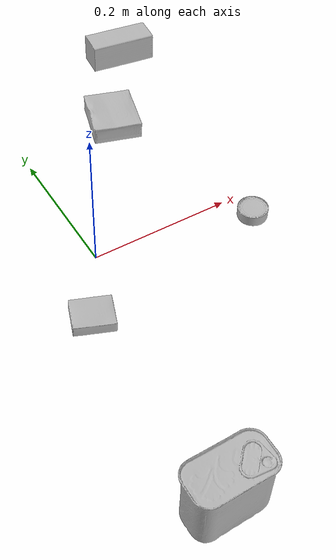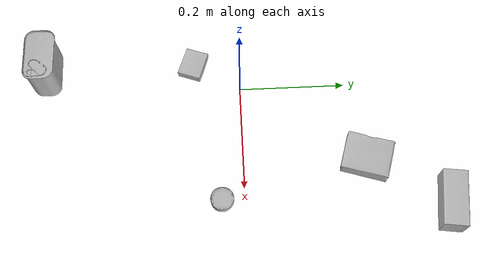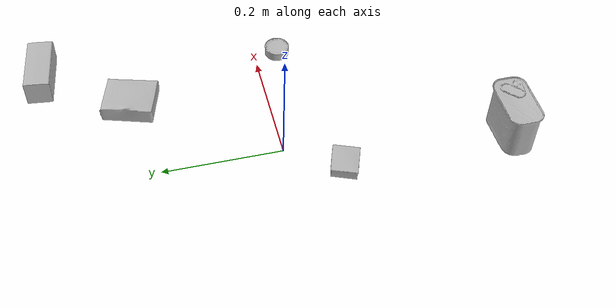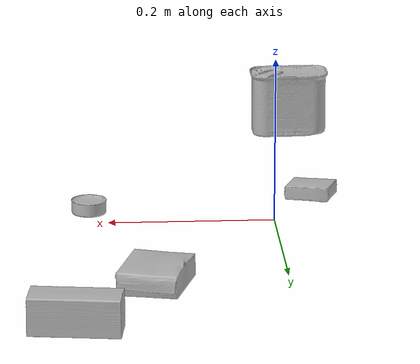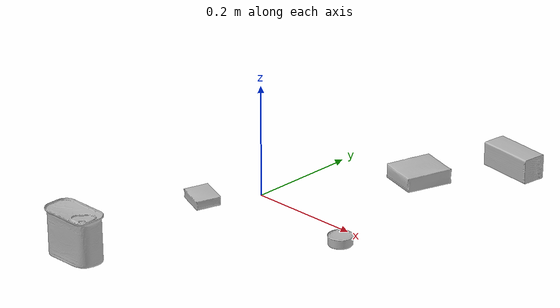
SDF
<sdf version="1.4">
  <world name="default">
    <light name="light1" type="point">
      <pose>0 0 1 0 0 0</pose>
      <diffuse>3 3 3 1</diffuse>
      <specular>3 3 3 1</specular>
    </light>
    <light name="light2" type="point">
      <pose>0 0.5 2 0 0 0</pose>
      <diffuse>1 1 1 1</diffuse>
      <specular>1 1 1 1</specular>
    </light>
    <light name="light3" type="point">
      <pose>0 0.5 2 0 0 0</pose>
      <diffuse>3 3 3 1</diffuse>
      <specular>3 3 3 1</specular>
    </light>
    <scene>
      <ambient>0.7 0.7 0.7</ambient>
    </scene>
    <model name="box1">
      <link name="link_box1">
        <collision name="default">
          <geometry>
            <mesh>
              <uri>model://pudding_box/collision_meshes/collision.obj</uri>
              <scale>0.5 0.5 0.5</scale>
            </mesh>
          </geometry>
          <surface>
            <friction>
              <ode>
                <mu>0.5</mu>
                <mu2>0.5</mu2>
              </ode>
            </friction>
          <contact>
        <ode>
            <max_vel>0</max_vel>
            <min_depth>0.0001</min_depth>
            <kp>1e8</kp>
        </ode>
    </contact></surface>
        </collision>
        <visual name="default">
          <geometry>
            <mesh>
              <uri>model://pudding_box/visual_meshes/visual.dae</uri>
              <scale>0.5 0.5 0.5</scale>
            </mesh>
          </geometry>
        </visual>
        <inertial>
          <mass>0.037190694361925125</mass>
          <pose>0.00024474109522998333 0.00040339428232982755 -0.0002594413817860186 0.005213101817299687 -0.0066037968510836995 0.02007982330137587</pose>
          <inertia>
            <ixx>1.0510541e-05</ixx>
            <iyy>7.071568e-06</iyy>
            <izz>1.552156e-05</izz>
            <ixy>0</ixy>
            <ixz>0</ixz>
            <iyz>0</iyz>
          </inertia>
        </inertial>
      </link>
      <pose>-0.05221480503678322 -0.08861435204744339 0.00986290629953146 0.022348207395467994 -0.011391923461341172 1.2196157335563842</pose>
    </model>
    <model name="box2">
      <link name="link_box2">
        <collision name="default">
          <geometry>
            <mesh>
              <uri>model://gelatin_box/collision_meshes/collision.obj</uri>
              <scale>1.0 1.0 1.0</scale>
            </mesh>
          </geometry>
          <surface>
            <friction>
              <ode>
                <mu>0.5</mu>
                <mu2>0.5</mu2>
              </ode>
            </friction>
          <contact>
        <ode>
            <max_vel>0</max_vel>
            <min_depth>0.0001</min_depth>
            <kp>1e8</kp>
        </ode>
    </contact></surface>
        </collision>
        <visual name="default">
          <geometry>
            <mesh>
              <uri>model://gelatin_box/visual_meshes/visual.dae</uri>
              <scale>1.0 1.0 1.0</scale>
            </mesh>
          </geometry>
        </visual>
        <inertial>
          <mass>0.11744645982980728</mass>
          <pose>0.0004319618456065655 0.00011156871914863586 -0.0003640321083366871 -0.001050371865231848 -0.004755818223747806 0.01644056319675078</pose>
          <inertia>
            <ixx>8.290762e-05</ixx>
            <iyy>5.9220478e-05</iyy>
            <izz>0.00012620387</izz>
            <ixy>0</ixy>
            <ixz>0</ixz>
            <iyz>0</iyz>
          </inertia>
        </inertial>
      </link>
      <pose>0.15332382917404175 0.2289096564054489 0.015168312005698681 0.005596903320977597 -0.0073039381188366335 2.8385780961896634</pose>
    </model>
    <model name="box3">
      <link name="link_box3">
        <collision name="default">
          <geometry>
            <mesh>
              <uri>model://wood_block/collision_meshes/collision.obj</uri>
              <scale>0.5 0.5 0.5</scale>
            </mesh>
          </geometry>
          <surface>
            <friction>
              <ode>
                <mu>0.5</mu>
                <mu2>0.5</mu2>
              </ode>
            </friction>
          <contact>
        <ode>
            <max_vel>0</max_vel>
            <min_depth>0.0001</min_depth>
            <kp>1e8</kp>
        </ode>
    </contact></surface>
        </collision>
        <visual name="default">
          <geometry>
            <mesh>
              <uri>model://wood_block/visual_meshes/visual.dae</uri>
              <scale>0.5 0.5 0.5</scale>
            </mesh>
          </geometry>
        </visual>
        <inertial>
          <mass>0.2439567744731903</mass>
          <pose>-2.906657982748584e-06 -0.00028540476341731846 0.00013204292918089777 -0.05220841280222248 -0.00519269633387802 -0.006861376952924709</pose>
          <inertia>
            <ixx>8.161277e-05</ixx>
            <iyy>0.00025781477</iyy>
            <izz>0.0002568504</izz>
            <ixy>0</ixy>
            <ixz>0</ixz>
            <iyz>0</iyz>
          </inertia>
        </inertial>
      </link>
      <pose>0.24588370323181152 0.37083879113197327 0.022629264742136 -0.005208607046567237 0.00571869964823128 -0.13095228393723515</pose>
    </model>
    <model name="can1">
      <link name="link_can1">
        <collision name="default">
          <geometry>
            <mesh>
              <uri>model://tuna_fish_can/collision_meshes/collision.obj</uri>
              <scale>0.5 0.5 0.5</scale>
            </mesh>
          </geometry>
          <surface>
            <friction>
              <ode>
                <mu>0.5</mu>
                <mu2>0.5</mu2>
              </ode>
            </friction>
          <contact>
        <ode>
            <max_vel>0</max_vel>
            <min_depth>0.0001</min_depth>
            <kp>1e8</kp>
        </ode>
    </contact></surface>
        </collision>
        <visual name="default">
          <geometry>
            <mesh>
              <uri>model://tuna_fish_can/visual_meshes/visual.dae</uri>
              <scale>0.5 0.5 0.5</scale>
            </mesh>
          </geometry>
        </visual>
        <inertial>
          <mass>0.02880808152258396</mass>
          <pose>-2.036173827946186e-05 -7.256211574713234e-06 -0.0005269025568850338 -0.0017944794030227106 0.00017162104037918286 0.24054189207372795</pose>
          <inertia>
            <ixx>3.894896e-06</ixx>
            <iyy>3.878662e-06</iyy>
            <izz>6.6647226e-06</izz>
            <ixy>0</ixy>
            <ixz>0</ixz>
            <iyz>0</iyz>
          </inertia>
        </inertial>
      </link>
      <pose>0.22218087315559387 -0.04111991077661514 0.008520000614225864 9.303290728285632e-09 6.669348016136382e-09 0.258871826691799</pose>
    </model>
    <model name="can2">
      <link name="link_can2">
        <collision name="default">
          <geometry>
            <mesh>
              <uri>model://potted_meat_can/collision_meshes/collision.obj</uri>
              <scale>1.0 1.0 1.0</scale>
            </mesh>
          </geometry>
          <surface>
            <friction>
              <ode>
                <mu>0.5</mu>
                <mu2>0.5</mu2>
              </ode>
            </friction>
          <contact>
        <ode>
            <max_vel>0</max_vel>
            <min_depth>0.0001</min_depth>
            <kp>1e8</kp>
        </ode>
    </contact></surface>
        </collision>
        <visual name="default">
          <geometry>
            <mesh>
              <uri>model://potted_meat_can/visual_meshes/visual.dae</uri>
              <scale>1.0 1.0 1.0</scale>
            </mesh>
          </geometry>
        </visual>
        <inertial>
          <mass>0.21485549211502075</mass>
          <pose>0.00022888135572429746 -5.989110650261864e-05 -0.0006367442547343671 -0.028093358319385277 -0.007232601893117688 0.015406275523281094</pose>
          <inertia>
            <ixx>0.00027638907</ixx>
            <iyy>0.00016792737</iyy>
            <izz>0.00020102048</izz>
            <ixy>0</ixy>
            <ixz>0</ixz>
            <iyz>0</iyz>
          </inertia>
        </inertial>
      </link>
      <pose>-0.04886941984295845 -0.3702732026576996 0.042128004133701324 -7.818861403789279e-08 -5.542839747399044e-07 1.5688166376331576</pose>
    </model>
  <physics type="ode">
      <max_contacts>50</max_contacts>
      <ode>
        <solver>
          <type>quick</type>
          <iters>75</iters>
        </solver>
        <constraints>
          <contact_max_correcting_vel>0</contact_max_correcting_vel>
          <contact_surface_layer>0</contact_surface_layer>
        </constraints>
      </ode>
    </physics></world>
</sdf>
